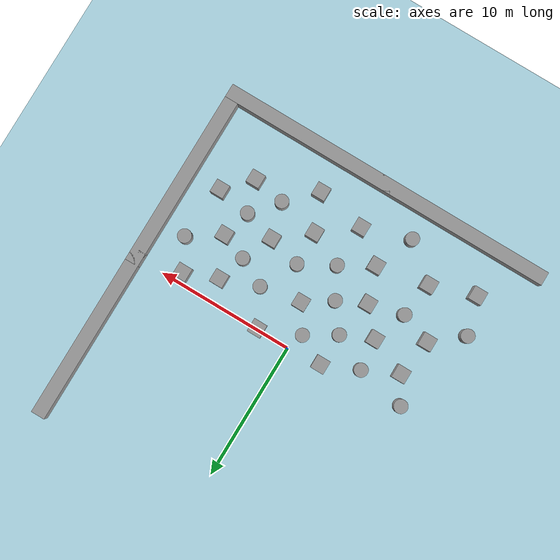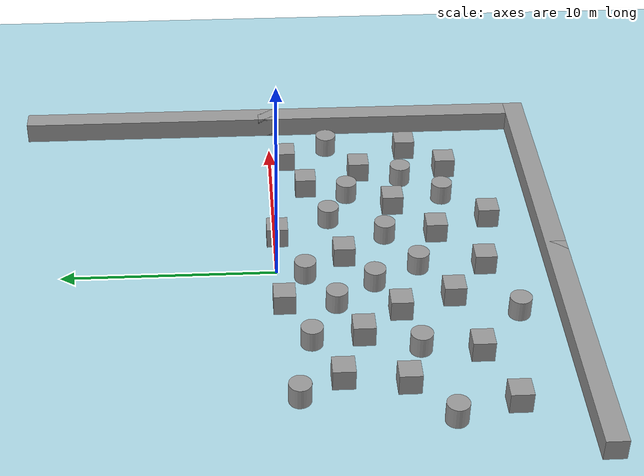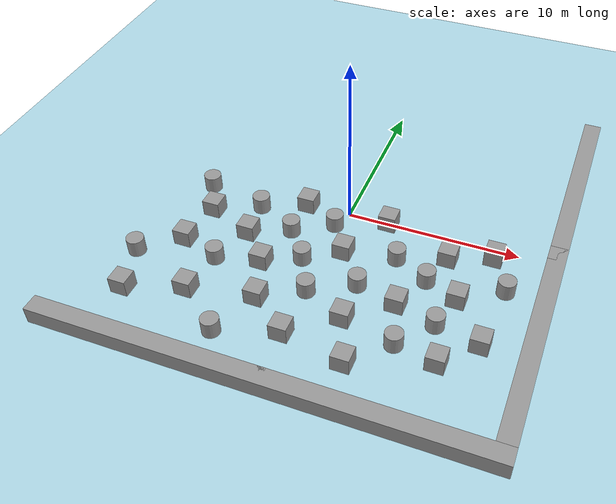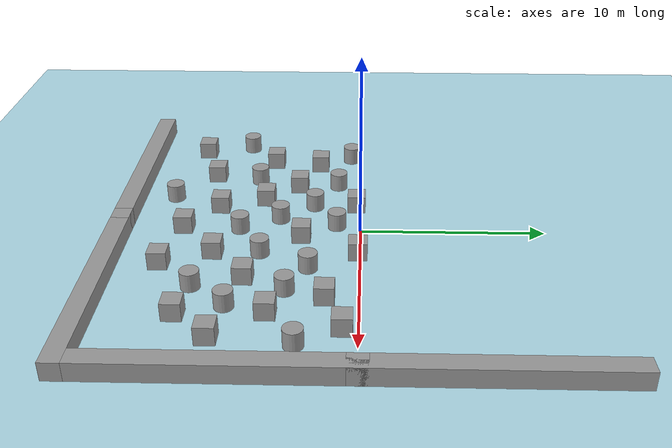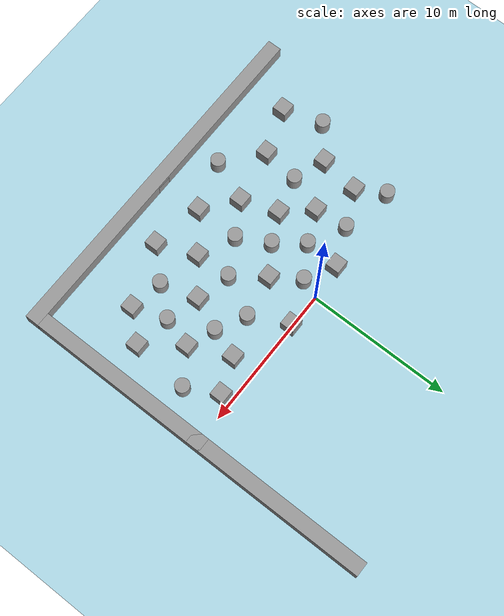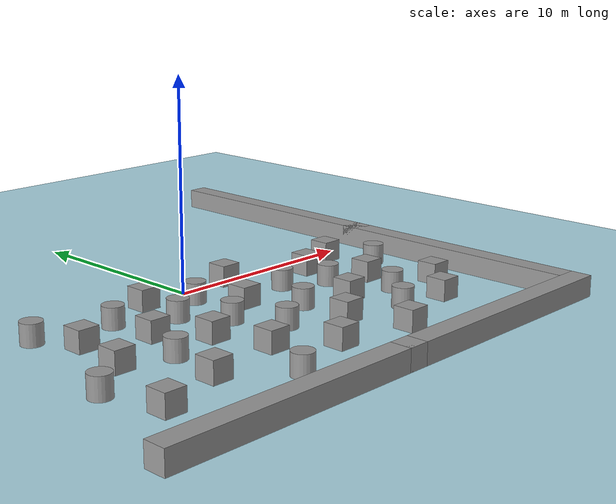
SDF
<sdf version="1.6">
 <world name="default">
  <model name="ground_plane">
   <static>1</static>
   <link name="link">
    <collision name="collision">
     <geometry><plane><normal>0 0 1</normal><size>100 100</size></plane></geometry>
     <surface><friction><ode><mu>100</mu><mu2>50</mu2></ode></friction></surface>
    </collision>
    <visual name="visual">
     <cast_shadows>0</cast_shadows>
     <geometry><plane><normal>0 0 1</normal><size>100 100</size></plane></geometry>
     <material>
      <script><name>Gazebo/Grey</name><uri>file://media/materials/scripts/gazebo.material</uri></script>
      <ambient>0.3 0.3 0.3 1</ambient>
      <diffuse>0.678431 0.847059 0.901961 1</diffuse>
      <specular>0.01 0.01 0.01 1</specular>
      <emissive>0 0 0 1</emissive>
      <shader type="vertex"><normal_map>__default__</normal_map></shader>
     </material>
    </visual>
   </link>
  </model>
  <model name="unit_box_0_1">
   <static>1</static>
   <pose>-2.47916 -0.22642 0.499995 0 -1e-05 0</pose>
   <link name="link">
    <inertial>
     <mass>1</mass>
     <inertia>
      <ixx>0.166667</ixx>
      <ixy>0</ixy>
      <ixz>0</ixz>
      <iyy>0.166667</iyy>
      <iyz>0</iyz>
      <izz>0.166667</izz>
     </inertia>
    </inertial>
    <collision name="collision"><geometry><box><size>1 1 1</size></box></geometry></collision>
    <visual name="visual">
     <geometry><box><size>1 1 1</size></box></geometry>
     <material>
      <script><name>Gazebo/Grey</name><uri>file://media/materials/scripts/gazebo.material</uri></script>
     </material>
    </visual>
   </link>
  </model>
  <model name="unit_box_0_4">
   <static>1</static>
   <pose>-4.76233 -3.59486 0.499995 0 -1e-05 0</pose>
   <link name="link">
    <inertial>
     <mass>1</mass>
     <inertia>
      <ixx>0.166667</ixx>
      <ixy>0</ixy>
      <ixz>0</ixz>
      <iyy>0.166667</iyy>
      <iyz>0</iyz>
      <izz>0.166667</izz>
     </inertia>
    </inertial>
    <collision name="collision"><geometry><box><size>1 1 1</size></box></geometry></collision>
    <visual name="visual">
     <geometry><box><size>1 1 1</size></box></geometry>
     <material>
      <script><name>Gazebo/Grey</name><uri>file://media/materials/scripts/gazebo.material</uri></script>
     </material>
    </visual>
   </link>
  </model>
  <model name="unit_box_0_5">
   <static>1</static>
   <pose>-7.47303 -2.49277 0.499995 0 -1e-05 0</pose>
   <link name="link">
    <inertial>
     <mass>1</mass>
     <inertia>
      <ixx>0.166667</ixx>
      <ixy>0</ixy>
      <ixz>0</ixz>
      <iyy>0.166667</iyy>
      <iyz>0</iyz>
      <izz>0.166667</izz>
     </inertia>
    </inertial>
    <collision name="collision"><geometry><box><size>1 1 1</size></box></geometry></collision>
    <visual name="visual">
     <geometry><box><size>1 1 1</size></box></geometry>
     <material>
      <script><name>Gazebo/Grey</name><uri>file://media/materials/scripts/gazebo.material</uri></script>
     </material>
    </visual>
   </link>
  </model>
  <model name="unit_box_0_8">
   <static>1</static>
   <pose>-7.8755 -5.2557 0.499995 0 -1e-05 0</pose>
   <link name="link">
    <inertial>
     <mass>1</mass>
     <inertia>
      <ixx>0.166667</ixx>
      <ixy>0</ixy>
      <ixz>0</ixz>
      <iyy>0.166667</iyy>
      <iyz>0</iyz>
      <izz>0.166667</izz>
     </inertia>
    </inertial>
    <collision name="collision"><geometry><box><size>1 1 1</size></box></geometry></collision>
    <visual name="visual">
     <geometry><box><size>1 1 1</size></box></geometry>
     <material>
      <script><name>Gazebo/Grey</name><uri>file://media/materials/scripts/gazebo.material</uri></script>
     </material>
    </visual>
   </link>
  </model>
  <model name="unit_box_0_9">
   <static>1</static>
   <pose>-3.1315 -5.41114 0.499995 0 -1e-05 0</pose>
   <link name="link">
    <inertial>
     <mass>1</mass>
     <inertia>
      <ixx>0.166667</ixx>
      <ixy>0</ixy>
      <ixz>0</ixz>
      <iyy>0.166667</iyy>
      <iyz>0</iyz>
      <izz>0.166667</izz>
     </inertia>
    </inertial>
    <collision name="collision"><geometry><box><size>1 1 1</size></box></geometry></collision>
    <visual name="visual">
     <geometry><box><size>1 1 1</size></box></geometry>
     <material>
      <script><name>Gazebo/Grey</name><uri>file://media/materials/scripts/gazebo.material</uri></script>
     </material>
    </visual>
   </link>
  </model>
  <model name="unit_cylinder_1">
   <static>1</static>
   <pose>-8.54469 -0.606777 0.499994 -3e-06 -1e-06 -0</pose>
   <link name="link">
    <inertial>
     <mass>1</mass>
     <inertia><ixx>0.145833</ixx><ixy>0</ixy><ixz>0</ixz><iyy>0.145833</iyy><iyz>0</iyz><izz>0.125</izz></inertia>
    </inertial>
    <collision name="collision">
     <geometry><cylinder><radius>0.5</radius><length>1</length></cylinder></geometry>
    </collision>
    <visual name="visual">
     <geometry><cylinder><radius>0.5</radius><length>1</length></cylinder></geometry>
     <material>
      <script><name>Gazebo/Grey</name><uri>file://media/materials/scripts/gazebo.material</uri></script>
     </material>
    </visual>
   </link>
  </model>
  <model name="unit_cylinder_2">
   <static>1</static>
   <pose>-5.00993 -1.31385 0.499994 -3e-06 -1e-06 -0</pose>
   <link name="link">
    <inertial>
     <mass>1</mass>
     <inertia><ixx>0.145833</ixx><ixy>0</ixy><ixz>0</ixz><iyy>0.145833</iyy><iyz>0</iyz><izz>0.125</izz></inertia>
    </inertial>
    <collision name="collision">
     <geometry><cylinder><radius>0.5</radius><length>1</length></cylinder></geometry>
    </collision>
    <visual name="visual">
     <geometry><cylinder><radius>0.5</radius><length>1</length></cylinder></geometry>
     <material>
      <script><name>Gazebo/Grey</name><uri>file://media/materials/scripts/gazebo.material</uri></script>
     </material>
    </visual>
   </link>
  </model>
  <model name="unit_cylinder_3">
   <static>1</static>
   <pose>-2.55384 -2.58637 0.499994 -3e-06 -1e-06 -0</pose>
   <link name="link">
    <inertial>
     <mass>1</mass>
     <inertia><ixx>0.145833</ixx><ixy>0</ixy><ixz>0</ixz><iyy>0.145833</iyy><iyz>0</iyz><izz>0.125</izz></inertia>
    </inertial>
    <collision name="collision">
     <geometry><cylinder><radius>0.5</radius><length>1</length></cylinder></geometry>
    </collision>
    <visual name="visual">
     <geometry><cylinder><radius>0.5</radius><length>1</length></cylinder></geometry>
     <material>
      <script><name>Gazebo/Grey</name><uri>file://media/materials/scripts/gazebo.material</uri></script>
     </material>
    </visual>
   </link>
  </model>
  <model name="unit_box_0_10">
   <static>1</static>
   <pose>0.810558 -3.15264 0.499995 0 -1e-05 0</pose>
   <link name="link">
    <inertial>
     <mass>1</mass>
     <inertia>
      <ixx>0.166667</ixx>
      <ixy>0</ixy>
      <ixz>0</ixz>
      <iyy>0.166667</iyy>
      <iyz>0</iyz>
      <izz>0.166667</izz>
     </inertia>
    </inertial>
    <collision name="collision"><geometry><box><size>1 1 1</size></box></geometry></collision>
    <visual name="visual">
     <geometry><box><size>1 1 1</size></box></geometry>
     <material>
      <script><name>Gazebo/Grey</name><uri>file://media/materials/scripts/gazebo.material</uri></script>
     </material>
    </visual>
   </link>
  </model>
  <model name="unit_box_0_11">
   <static>1</static>
   <pose>2.43387 -0.102499 0.499995 0 -1e-05 0</pose>
   <link name="link">
    <inertial>
     <mass>1</mass>
     <inertia>
      <ixx>0.166667</ixx>
      <ixy>0</ixy>
      <ixz>0</ixz>
      <iyy>0.166667</iyy>
      <iyz>0</iyz>
      <izz>0.166667</izz>
     </inertia>
    </inertial>
    <collision name="collision"><geometry><box><size>1 1 1</size></box></geometry></collision>
    <visual name="visual">
     <geometry><box><size>1 1 1</size></box></geometry>
     <material>
      <script><name>Gazebo/Grey</name><uri>file://media/materials/scripts/gazebo.material</uri></script>
     </material>
    </visual>
   </link>
  </model>
  <model name="unit_cylinder_5">
   <static>1</static>
   <pose>3.73708 -2.62236 0.499994 -3e-06 -1e-06 -0</pose>
   <link name="link">
    <inertial>
     <mass>1</mass>
     <inertia><ixx>0.145833</ixx><ixy>0</ixy><ixz>0</ixz><iyy>0.145833</iyy><iyz>0</iyz><izz>0.125</izz></inertia>
    </inertial>
    <collision name="collision">
     <geometry><cylinder><radius>0.5</radius><length>1</length></cylinder></geometry>
    </collision>
    <visual name="visual">
     <geometry><cylinder><radius>0.5</radius><length>1</length></cylinder></geometry>
     <material>
      <script><name>Gazebo/Grey</name><uri>file://media/materials/scripts/gazebo.material</uri></script>
     </material>
    </visual>
   </link>
  </model>
  <model name="unit_cylinder_6">
   <static>1</static>
   <pose>-1.12074 -4.42838 0.499994 -3e-06 -1e-06 -0</pose>
   <link name="link">
    <inertial>
     <mass>1</mass>
     <inertia><ixx>0.145833</ixx><ixy>0</ixy><ixz>0</ixz><iyy>0.145833</iyy><iyz>0</iyz><izz>0.125</izz></inertia>
    </inertial>
    <collision name="collision">
     <geometry><cylinder><radius>0.5</radius><length>1</length></cylinder></geometry>
    </collision>
    <visual name="visual">
     <geometry><cylinder><radius>0.5</radius><length>1</length></cylinder></geometry>
     <material>
      <script><name>Gazebo/Grey</name><uri>file://media/materials/scripts/gazebo.material</uri></script>
     </material>
    </visual>
   </link>
  </model>
  <model name="unit_cylinder_7">
   <static>1</static>
   <pose>2.388 -5.22298 0.499994 -3e-06 -1e-06 -0</pose>
   <link name="link">
    <inertial>
     <mass>1</mass>
     <inertia><ixx>0.145833</ixx><ixy>0</ixy><ixz>0</ixz><iyy>0.145833</iyy><iyz>0</iyz><izz>0.125</izz></inertia>
    </inertial>
    <collision name="collision">
     <geometry><cylinder><radius>0.5</radius><length>1</length></cylinder></geometry>
    </collision>
    <visual name="visual">
     <geometry><cylinder><radius>0.5</radius><length>1</length></cylinder></geometry>
     <material>
      <script><name>Gazebo/Grey</name><uri>file://media/materials/scripts/gazebo.material</uri></script>
     </material>
    </visual>
   </link>
  </model>
  <model name="unit_cylinder_8">
   <static>1</static>
   <pose>-0.423495 -1.27946 0.499994 -3e-06 -1e-06 -0</pose>
   <link name="link">
    <inertial>
     <mass>1</mass>
     <inertia><ixx>0.145833</ixx><ixy>0</ixy><ixz>0</ixz><iyy>0.145833</iyy><iyz>0</iyz><izz>0.125</izz></inertia>
    </inertial>
    <collision name="collision">
     <geometry><cylinder><radius>0.5</radius><length>1</length></cylinder></geometry>
    </collision>
    <visual name="visual">
     <geometry><cylinder><radius>0.5</radius><length>1</length></cylinder></geometry>
     <material>
      <script><name>Gazebo/Grey</name><uri>file://media/materials/scripts/gazebo.material</uri></script>
     </material>
    </visual>
   </link>
  </model>
  <model name="unit_cylinder_9">
   <static>1</static>
   <pose>-5.63155 -6.03304 0.499997 3e-06 1e-06 -0</pose>
   <link name="link">
    <inertial>
     <mass>1</mass>
     <inertia><ixx>0.145833</ixx><ixy>0</ixy><ixz>0</ixz><iyy>0.145833</iyy><iyz>0</iyz><izz>0.125</izz></inertia>
    </inertial>
    <collision name="collision">
     <geometry><cylinder><radius>0.5</radius><length>1</length></cylinder></geometry>
    </collision>
    <visual name="visual">
     <geometry><cylinder><radius>0.5</radius><length>1</length></cylinder></geometry>
     <material>
      <script><name>Gazebo/Grey</name><uri>file://media/materials/scripts/gazebo.material</uri></script>
     </material>
    </visual>
   </link>
  </model>
  <model name="unit_cylinder_10">
   <static>1</static>
   <pose>-0.000285 -6.55164 0.499994 -3e-06 -2e-06 0</pose>
   <link name="link">
    <inertial>
     <mass>1</mass>
     <inertia><ixx>0.145833</ixx><ixy>0</ixy><ixz>0</ixz><iyy>0.145833</iyy><iyz>0</iyz><izz>0.125</izz></inertia>
    </inertial>
    <collision name="collision">
     <geometry><cylinder><radius>0.5</radius><length>1</length></cylinder></geometry>
    </collision>
    <visual name="visual">
     <geometry><cylinder><radius>0.5</radius><length>1</length></cylinder></geometry>
     <material>
      <script><name>Gazebo/Grey</name><uri>file://media/materials/scripts/gazebo.material</uri></script>
     </material>
    </visual>
   </link>
  </model>
  <model name="unit_box_0">
   <static>1</static>
   <pose>-2.27264 -7.9056 0.499995 -1e-05 0 0</pose>
   <link name="link">
    <inertial>
     <mass>1</mass>
     <inertia>
      <ixx>0.166667</ixx>
      <ixy>0</ixy>
      <ixz>0</ixz>
      <iyy>0.166667</iyy>
      <iyz>0</iyz>
      <izz>0.166667</izz>
     </inertia>
    </inertial>
    <collision name="collision"><geometry><box><size>1 1 1</size></box></geometry></collision>
    <visual name="visual">
     <geometry><box><size>1 1 1</size></box></geometry>
     <material>
      <script><name>Gazebo/Grey</name><uri>file://media/materials/scripts/gazebo.material</uri></script>
     </material>
    </visual>
   </link>
  </model>
  <model name="unit_box_1">
   <static>1</static>
   <pose>-5.99793 -8.62935 0.499995 0 -1e-05 0</pose>
   <link name="link">
    <inertial>
     <mass>1</mass>
     <inertia>
      <ixx>0.166667</ixx>
      <ixy>0</ixy>
      <ixz>0</ixz>
      <iyy>0.166667</iyy>
      <iyz>0</iyz>
      <izz>0.166667</izz>
     </inertia>
    </inertial>
    <collision name="collision"><geometry><box><size>1 1 1</size></box></geometry></collision>
    <visual name="visual">
     <geometry><box><size>1 1 1</size></box></geometry>
     <material>
      <script><name>Gazebo/Grey</name><uri>file://media/materials/scripts/gazebo.material</uri></script>
     </material>
    </visual>
   </link>
  </model>
  <model name="unit_cylinder_11">
   <static>1</static>
   <pose>-10 -6.99416 0.499997 2e-06 2e-06 0</pose>
   <link name="link">
    <inertial>
     <mass>1</mass>
     <inertia><ixx>0.145833</ixx><ixy>0</ixy><ixz>0</ixz><iyy>0.145833</iyy><iyz>0</iyz><izz>0.125</izz></inertia>
    </inertial>
    <collision name="collision">
     <geometry><cylinder><radius>0.5</radius><length>1</length></cylinder></geometry>
    </collision>
    <visual name="visual">
     <geometry><cylinder><radius>0.5</radius><length>1</length></cylinder></geometry>
     <material>
      <script><name>Gazebo/Grey</name><uri>file://media/materials/scripts/gazebo.material</uri></script>
     </material>
    </visual>
   </link>
  </model>
  <model name="unit_box_2">
   <static>1</static>
   <pose>-9.1951 -9.70372 0.499995 0 -1e-05 0</pose>
   <link name="link">
    <inertial>
     <mass>1</mass>
     <inertia>
      <ixx>0.166667</ixx>
      <ixy>0</ixy>
      <ixz>0</ixz>
      <iyy>0.166667</iyy>
      <iyz>0</iyz>
      <izz>0.166667</izz>
     </inertia>
    </inertial>
    <collision name="collision"><geometry><box><size>1 1 1</size></box></geometry></collision>
    <visual name="visual">
     <geometry><box><size>1 1 1</size></box></geometry>
     <material>
      <script><name>Gazebo/Grey</name><uri>file://media/materials/scripts/gazebo.material</uri></script>
     </material>
    </visual>
   </link>
  </model>
  <model name="unit_cylinder_12">
   <static>1</static>
   <pose>-3.44651 -10.717 0.499997 2e-06 2e-06 0</pose>
   <link name="link">
    <inertial>
     <mass>1</mass>
     <inertia><ixx>0.145833</ixx><ixy>0</ixy><ixz>0</ixz><iyy>0.145833</iyy><iyz>0</iyz><izz>0.125</izz></inertia>
    </inertial>
    <collision name="collision">
     <geometry><cylinder><radius>0.5</radius><length>1</length></cylinder></geometry>
    </collision>
    <visual name="visual">
     <geometry><cylinder><radius>0.5</radius><length>1</length></cylinder></geometry>
     <material>
      <script><name>Gazebo/Grey</name><uri>file://media/materials/scripts/gazebo.material</uri></script>
     </material>
    </visual>
   </link>
  </model>
  <model name="unit_box_3">
   <static>1</static>
   <pose>-0.054136 -9.62573 0.499995 0 -1e-05 0</pose>
   <link name="link">
    <inertial>
     <mass>1</mass>
     <inertia>
      <ixx>0.166667</ixx>
      <ixy>0</ixy>
      <ixz>0</ixz>
      <iyy>0.166667</iyy>
      <iyz>0</iyz>
      <izz>0.166667</izz>
     </inertia>
    </inertial>
    <collision name="collision"><geometry><box><size>1 1 1</size></box></geometry></collision>
    <visual name="visual">
     <geometry><box><size>1 1 1</size></box></geometry>
     <material>
      <script><name>Gazebo/Grey</name><uri>file://media/materials/scripts/gazebo.material</uri></script>
     </material>
    </visual>
   </link>
  </model>
  <model name="unit_box_4">
   <static>1</static>
   <pose>2.46273 -7.6749 0.499995 -1e-05 0 0</pose>
   <link name="link">
    <inertial>
     <mass>1</mass>
     <inertia>
      <ixx>0.166667</ixx>
      <ixy>0</ixy>
      <ixz>0</ixz>
      <iyy>0.166667</iyy>
      <iyz>0</iyz>
      <izz>0.166667</izz>
     </inertia>
    </inertial>
    <collision name="collision"><geometry><box><size>1 1 1</size></box></geometry></collision>
    <visual name="visual">
     <geometry><box><size>1 1 1</size></box></geometry>
     <material>
      <script><name>Gazebo/Grey</name><uri>file://media/materials/scripts/gazebo.material</uri></script>
     </material>
    </visual>
   </link>
  </model>
  <model name="unit_box_5">
   <static>1</static>
   <pose>4.75273 -5.81633 0.499995 0 -1e-05 0</pose>
   <link name="link">
    <inertial>
     <mass>1</mass>
     <inertia>
      <ixx>0.166667</ixx>
      <ixy>0</ixy>
      <ixz>0</ixz>
      <iyy>0.166667</iyy>
      <iyz>0</iyz>
      <izz>0.166667</izz>
     </inertia>
    </inertial>
    <collision name="collision"><geometry><box><size>1 1 1</size></box></geometry></collision>
    <visual name="visual">
     <geometry><box><size>1 1 1</size></box></geometry>
     <material>
      <script><name>Gazebo/Grey</name><uri>file://media/materials/scripts/gazebo.material</uri></script>
     </material>
    </visual>
   </link>
  </model>
  <model name="unit_box_9">
   <static>1</static>
   <pose>3.51936 -10.3 0.499995 0 -1e-05 0</pose>
   <link name="link">
    <inertial>
     <mass>1</mass>
     <inertia>
      <ixx>0.166667</ixx>
      <ixy>0</ixy>
      <ixz>0</ixz>
      <iyy>0.166667</iyy>
      <iyz>0</iyz>
      <izz>0.166667</izz>
     </inertia>
    </inertial>
    <collision name="collision"><geometry><box><size>1 1 1</size></box></geometry></collision>
    <visual name="visual">
     <geometry><box><size>1 1 1</size></box></geometry>
     <material>
      <script><name>Gazebo/Grey</name><uri>file://media/materials/scripts/gazebo.material</uri></script>
     </material>
    </visual>
   </link>
  </model>
  <model name="unit_cylinder_17">
   <static>1</static>
   <pose>5.4644 -8.33516 0.499997 4e-06 3e-06 -0</pose>
   <link name="link">
    <inertial>
     <mass>1</mass>
     <inertia><ixx>0.145833</ixx><ixy>0</ixy><ixz>0</ixz><iyy>0.145833</iyy><iyz>0</iyz><izz>0.125</izz></inertia>
    </inertial>
    <collision name="collision">
     <geometry><cylinder><radius>0.5</radius><length>1</length></cylinder></geometry>
    </collision>
    <visual name="visual">
     <geometry><cylinder><radius>0.5</radius><length>1</length></cylinder></geometry>
     <material>
      <script><name>Gazebo/Grey</name><uri>file://media/materials/scripts/gazebo.material</uri></script>
     </material>
    </visual>
   </link>
  </model>
  <model name="unit_cylinder_18">
   <static>1</static>
   <pose>7.04705 -6.44553 0.499994 -4e-06 -3e-06 -0</pose>
   <link name="link">
    <inertial>
     <mass>1</mass>
     <inertia><ixx>0.145833</ixx><ixy>0</ixy><ixz>0</ixz><iyy>0.145833</iyy><iyz>0</iyz><izz>0.125</izz></inertia>
    </inertial>
    <collision name="collision">
     <geometry><cylinder><radius>0.5</radius><length>1</length></cylinder></geometry>
    </collision>
    <visual name="visual">
     <geometry><cylinder><radius>0.5</radius><length>1</length></cylinder></geometry>
     <material>
      <script><name>Gazebo/Grey</name><uri>file://media/materials/scripts/gazebo.material</uri></script>
     </material>
    </visual>
   </link>
  </model>
  <model name="unit_cylinder_19">
   <static>1</static>
   <pose>5.73316 -3.6532 0.499997 4e-06 4e-06 -0</pose>
   <link name="link">
    <inertial>
     <mass>1</mass>
     <inertia><ixx>0.145833</ixx><ixy>0</ixy><ixz>0</ixz><iyy>0.145833</iyy><iyz>0</iyz><izz>0.125</izz></inertia>
    </inertial>
    <collision name="collision">
     <geometry><cylinder><radius>0.5</radius><length>1</length></cylinder></geometry>
    </collision>
    <visual name="visual">
     <geometry><cylinder><radius>0.5</radius><length>1</length></cylinder></geometry>
     <material>
      <script><name>Gazebo/Grey</name><uri>file://media/materials/scripts/gazebo.material</uri></script>
     </material>
    </visual>
   </link>
  </model>
  <model name="unit_box_10">
   <static>1</static>
   <pose>6.38156 -1.66567 0.499995 0 -1e-05 0</pose>
   <link name="link">
    <inertial>
     <mass>1</mass>
     <inertia>
      <ixx>0.166667</ixx>
      <ixy>0</ixy>
      <ixz>0</ixz>
      <iyy>0.166667</iyy>
      <iyz>0</iyz>
      <izz>0.166667</izz>
     </inertia>
    </inertial>
    <collision name="collision"><geometry><box><size>1 1 1</size></box></geometry></collision>
    <visual name="visual">
     <geometry><box><size>1 1 1</size></box></geometry>
     <material>
      <script><name>Gazebo/Grey</name><uri>file://media/materials/scripts/gazebo.material</uri></script>
     </material>
    </visual>
   </link>
  </model>
  <model name="unit_box_12">
   <static>1</static>
   <pose>7.78565 -8.73859 0.499995 0 -1e-05 0</pose>
   <link name="link">
    <inertial>
     <mass>1</mass>
     <inertia>
      <ixx>0.166667</ixx>
      <ixy>0</ixy>
      <ixz>0</ixz>
      <iyy>0.166667</iyy>
      <iyz>0</iyz>
      <izz>0.166667</izz>
     </inertia>
    </inertial>
    <collision name="collision"><geometry><box><size>1 1 1</size></box></geometry></collision>
    <visual name="visual">
     <geometry><box><size>1 1 1</size></box></geometry>
     <material>
      <script><name>Gazebo/Grey</name><uri>file://media/materials/scripts/gazebo.material</uri></script>
     </material>
    </visual>
   </link>
  </model>
  <model name="unit_box_13">
   <static>1</static>
   <pose>7.62657 -4.39438 0.499995 -1e-05 0 0</pose>
   <link name="link">
    <inertial>
     <mass>1</mass>
     <inertia>
      <ixx>0.166667</ixx>
      <ixy>0</ixy>
      <ixz>0</ixz>
      <iyy>0.166667</iyy>
      <iyz>0</iyz>
      <izz>0.166667</izz>
     </inertia>
    </inertial>
    <collision name="collision"><geometry><box><size>1 1 1</size></box></geometry></collision>
    <visual name="visual">
     <geometry><box><size>1 1 1</size></box></geometry>
     <material>
      <script><name>Gazebo/Grey</name><uri>file://media/materials/scripts/gazebo.material</uri></script>
     </material>
    </visual>
   </link>
  </model>
  <model name="unit_box_17">
   <static>1</static>
   <pose>8.73979 -0.744015 0.499995 0 -1e-05 0</pose>
   <link name="link">
    <inertial>
     <mass>1</mass>
     <inertia>
      <ixx>0.166667</ixx>
      <ixy>0</ixy>
      <ixz>0</ixz>
      <iyy>0.166667</iyy>
      <iyz>0</iyz>
      <izz>0.166667</izz>
     </inertia>
    </inertial>
    <collision name="collision"><geometry><box><size>1 1 1</size></box></geometry></collision>
    <visual name="visual">
     <geometry><box><size>1 1 1</size></box></geometry>
     <material>
      <script><name>Gazebo/Grey</name><uri>file://media/materials/scripts/gazebo.material</uri></script>
     </material>
    </visual>
   </link>
  </model>
  <model name="unit_box_21">
   <static>1</static>
   <pose>9.50771 -6.89262 0.499995 -1e-05 0 0</pose>
   <link name="link">
    <inertial>
     <mass>1</mass>
     <inertia>
      <ixx>0.166667</ixx>
      <ixy>0</ixy>
      <ixz>0</ixz>
      <iyy>0.166667</iyy>
      <iyz>0</iyz>
      <izz>0.166667</izz>
     </inertia>
    </inertial>
    <collision name="collision"><geometry><box><size>1 1 1</size></box></geometry></collision>
    <visual name="visual">
     <geometry><box><size>1 1 1</size></box></geometry>
     <material>
      <script><name>Gazebo/Grey</name><uri>file://media/materials/scripts/gazebo.material</uri></script>
     </material>
    </visual>
   </link>
  </model>
  <model name="unit_cylinder_28">
   <static>1</static>
   <pose>9.88571 -2.90808 0.499992 -2e-06 2e-06 -0</pose>
   <link name="link">
    <inertial>
     <mass>1</mass>
     <inertia><ixx>0.145833</ixx><ixy>0</ixy><ixz>0</ixz><iyy>0.145833</iyy><iyz>0</iyz><izz>0.125</izz></inertia>
    </inertial>
    <collision name="collision">
     <geometry><cylinder><radius>0.5</radius><length>1</length></cylinder></geometry>
    </collision>
    <visual name="visual">
     <geometry><cylinder><radius>0.5</radius><length>1</length></cylinder></geometry>
     <material>
      <script><name>Gazebo/Grey</name><uri>file://media/materials/scripts/gazebo.material</uri></script>
     </material>
    </visual>
   </link>
  </model>
  <model name="25m_wall">
   <static>1</static>
   <link name="link">
    <inertial>
     <mass>1</mass>
     <inertia>
      <ixx>0.166667</ixx>
      <ixy>0</ixy>
      <ixz>0</ixz>
      <iyy>0.166667</iyy>
      <iyz>0</iyz>
      <izz>0.166667</izz>
     </inertia>
    </inertial>
    <visual name="ModelPreview_1::link::visual_1">
     <geometry><box><size>1 1 1</size></box></geometry>
     <material>
      <script><name>Gazebo/Grey</name><uri>file://media/materials/scripts/gazebo.material</uri></script>
      <ambient>0.3 0.3 0.3 1</ambient>
      <diffuse>0.7 0.7 0.7 1</diffuse>
      <specular>0.01 0.01 0.01 1</specular>
      <emissive>0 0 0 1</emissive>
      <shader type="vertex"><normal_map>__default__</normal_map></shader>
     </material>
    </visual>
    <visual name="visual">
     <geometry><box><size>25 1 1</size></box></geometry>
     <material>
      <script><name>Gazebo/Grey</name><uri>file://media/materials/scripts/gazebo.material</uri></script>
      <ambient>0.3 0.3 0.3 1</ambient>
      <diffuse>0.7 0.7 0.7 1</diffuse>
      <specular>0.01 0.01 0.01 1</specular>
      <emissive>0 0 0 1</emissive>
      <shader type="vertex"><normal_map>__default__</normal_map></shader>
     </material>
    </visual>
    <collision name="collision">
     <geometry><box><size>25 1 1</size></box></geometry>
     <surface>
      <friction>
       <ode><mu>1</mu><mu2>1</mu2><fdir1>0 0 0</fdir1><slip1>0</slip1><slip2>0</slip2></ode>
       <torsional>
        <coefficient>1</coefficient>
        <patch_radius>0</patch_radius>
        <surface_radius>0</surface_radius>
        <use_patch_radius>1</use_patch_radius>
        <ode><slip>0</slip></ode>
       </torsional>
      </friction>
      <bounce><restitution_coefficient>0</restitution_coefficient><threshold>1e+06</threshold></bounce>
      <contact>
       <collide_without_contact>0</collide_without_contact>
       <collide_without_contact_bitmask>1</collide_without_contact_bitmask>
       <collide_bitmask>1</collide_bitmask>
       <ode>
        <soft_cfm>0</soft_cfm>
        <soft_erp>0.2</soft_erp>
        <kp>1e+13</kp>
        <kd>1</kd>
        <max_vel>0.01</max_vel>
        <min_depth>0</min_depth>
       </ode>
       <bullet>
        <split_impulse>1</split_impulse>
        <split_impulse_penetration_threshold>-0.01</split_impulse_penetration_threshold>
        <soft_cfm>0</soft_cfm>
        <soft_erp>0.2</soft_erp>
        <kp>1e+13</kp>
        <kd>1</kd>
       </bullet>
      </contact>
     </surface>
    </collision>
   </link>
   <pose>0 -13 0.5 0 -0 0</pose>
  </model>
  <model name="25m_wall_clone_0">
   <static>1</static>
   <link name="link">
    <inertial>
     <mass>1</mass>
     <inertia>
      <ixx>0.166667</ixx>
      <ixy>0</ixy>
      <ixz>0</ixz>
      <iyy>0.166667</iyy>
      <iyz>0</iyz>
      <izz>0.166667</izz>
     </inertia>
    </inertial>
    <visual name="ModelPreview_1::link::visual_1">
     <geometry><box><size>1 1 1</size></box></geometry>
     <material>
      <script><name>Gazebo/Grey</name><uri>file://media/materials/scripts/gazebo.material</uri></script>
      <ambient>0.3 0.3 0.3 1</ambient>
      <diffuse>0.7 0.7 0.7 1</diffuse>
      <specular>0.01 0.01 0.01 1</specular>
      <emissive>0 0 0 1</emissive>
      <shader type="vertex"><normal_map>__default__</normal_map></shader>
     </material>
    </visual>
    <visual name="visual">
     <geometry><box><size>25 1 1</size></box></geometry>
     <material>
      <script><name>Gazebo/Grey</name><uri>file://media/materials/scripts/gazebo.material</uri></script>
      <ambient>0.3 0.3 0.3 1</ambient>
      <diffuse>0.7 0.7 0.7 1</diffuse>
      <specular>0.01 0.01 0.01 1</specular>
      <emissive>0 0 0 1</emissive>
      <shader type="vertex"><normal_map>__default__</normal_map></shader>
     </material>
    </visual>
    <collision name="collision">
     <geometry><box><size>25 1 1</size></box></geometry>
     <surface>
      <friction>
       <ode><mu>1</mu><mu2>1</mu2><fdir1>0 0 0</fdir1><slip1>0</slip1><slip2>0</slip2></ode>
       <torsional>
        <coefficient>1</coefficient>
        <patch_radius>0</patch_radius>
        <surface_radius>0</surface_radius>
        <use_patch_radius>1</use_patch_radius>
        <ode><slip>0</slip></ode>
       </torsional>
      </friction>
      <bounce><restitution_coefficient>0</restitution_coefficient><threshold>1e+06</threshold></bounce>
      <contact>
       <collide_without_contact>0</collide_without_contact>
       <collide_without_contact_bitmask>1</collide_without_contact_bitmask>
       <collide_bitmask>1</collide_bitmask>
       <ode>
        <soft_cfm>0</soft_cfm>
        <soft_erp>0.2</soft_erp>
        <kp>1e+13</kp>
        <kd>1</kd>
        <max_vel>0.01</max_vel>
        <min_depth>0</min_depth>
       </ode>
       <bullet>
        <split_impulse>1</split_impulse>
        <split_impulse_penetration_threshold>-0.01</split_impulse_penetration_threshold>
        <soft_cfm>0</soft_cfm>
        <soft_erp>0.2</soft_erp>
        <kp>1e+13</kp>
        <kd>1</kd>
       </bullet>
      </contact>
     </surface>
    </collision>
   </link>
   <pose>12 0 0.5 0 -0 1.5708</pose>
  </model>
 </world>
</sdf>
